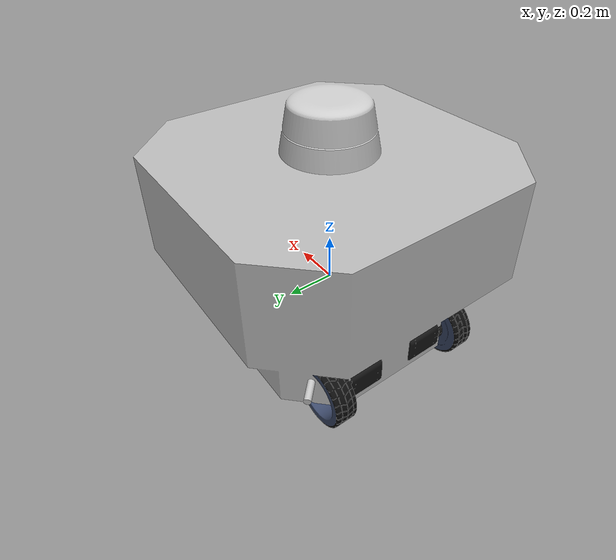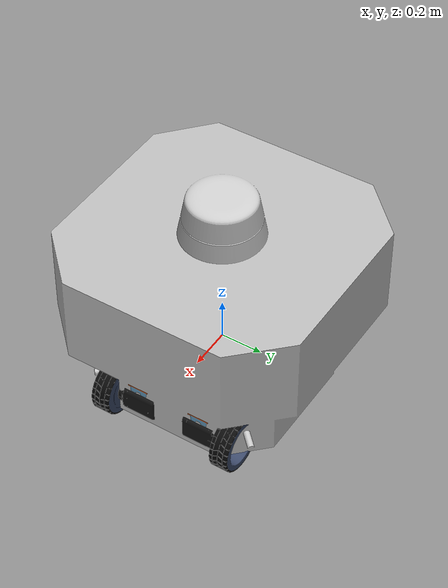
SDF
<sdf version="1.7">
  <model name="rs_robot">

    <link name="base_link">
      <inertial>
        <pose>-0.015715 0.0 0.11 0.0 -0.0 0.0</pose>
        <mass>175.0</mass>
        <inertia>
          <ixx>1.514375</ixx>
          <ixy>0.0</ixy>
          <ixz>0.41250000000000003</ixz>
          <iyy>1.103034375</iyy>
          <iyz>0.0</iyz>
          <izz>1.061159375</izz>
        </inertia>
      </inertial>
      <visual name="base_footprint_fixed_joint_lump__base_link_visual">
        <pose>0.0 0.0 0.0 0.0 -0.0 0.0</pose>
        <geometry>
          <mesh>
            <scale>5.0 5.0 5.0</scale>
            <uri>model://rs_robot/meshes/DAE/base/base_link.dae</uri>
          </mesh>
        </geometry>
      </visual>
    </link>

    <joint name="fl_steering_joint" type="revolute">
      <pose relative_to="base_link">0.385 0.155 -0.02 0.0 -0.0 0.0</pose>
      <parent>base_link</parent>
      <child>fl_steering_link</child>
      <axis>
        <xyz>0 0 1</xyz>
        <limit>
          <lower>-2.1</lower>
          <upper>2.1</upper>
          <effort>5</effort>
          <velocity>6.28</velocity>
        </limit>
        <dynamics>
          <damping>0.005</damping>
          <friction>0.02</friction>
          <spring_reference>0</spring_reference>
          <spring_stiffness>0</spring_stiffness>
        </dynamics>
      </axis>
    </joint>
    <link name="fl_steering_link">
      <pose relative_to="fl_steering_joint">0.0 0.0 0.0 0.0 -0.0 0.0</pose>
      <inertial>
        <pose>0.0 0.0 -0.1 0.0 -0.0 0.0</pose>
        <mass>18.75</mass>
        <inertia>
          <ixx>0.03125</ixx>
          <ixy>0.0</ixy>
          <ixz>0.0</ixz>
          <iyy>0.03125</iyy>
          <iyz>0.0</iyz>
          <izz>0.012499999999999999</izz>
        </inertia>
      </inertial>
      <visual name="fl_steering_link_visual">
        <pose>0.0 0.0 0.0 0.0 -0.0 0.0</pose>
        <geometry>
          <mesh>
            <scale>5.0 5.0 5.0</scale>
            <uri>model://rs_robot/meshes/DAE/suspension/front_left_link.dae</uri>
          </mesh>
        </geometry>
      </visual>
      <self_collide>0</self_collide>
    </link>
    <joint name="fl_wheel_joint" type="revolute">
      <pose relative_to="fl_steering_link">0.0 0.10500000000000001 -0.125 0.0 0.0 -3.14159</pose>
      <parent>fl_steering_link</parent>
      <child>fl_wheel_link</child>
      <axis>
        <xyz>0 -1 0</xyz>
        <limit>
          <effort>1.5</effort>
          <velocity>20</velocity>
          <lower>-1e+16</lower>
          <upper>1e+16</upper>
        </limit>
        <dynamics>
          <damping>0.005</damping>
          <friction>0.02</friction>
          <spring_reference>0</spring_reference>
          <spring_stiffness>0</spring_stiffness>
        </dynamics>
      </axis>
    </joint>
    <link name="fl_wheel_link">
      <pose relative_to="fl_wheel_joint">0.0 0.0 0.0 0.0 -0.0 0.0</pose>
      <inertial>
        <pose>0.0 -0.035 0.0 0.0 -0.0 0.0</pose>
        <mass>6.25</mass>
        <inertia>
          <ixx>0.03125</ixx>
          <ixy>0.0</ixy>
          <ixz>0.0</ixz>
          <iyy>0.05625</iyy>
          <iyz>0.0</iyz>
          <izz>0.03125</izz>
        </inertia>
      </inertial>
      <visual name="fl_wheel_link_visual">
        <pose>0.0 0.0 0.0 0.0 -0.0 0.0</pose>
        <geometry>
          <mesh>
            <scale>5.0 5.0 5.0</scale>
            <uri>model://rs_robot/meshes/DAE/wheel/wheel_link.dae</uri>
          </mesh>
        </geometry>
      </visual>
    </link>
    <joint name="fr_steering_joint" type="revolute">
      <pose relative_to="base_link">0.385 -0.155 -0.02 0.0 -0.0 0.0</pose>
      <parent>base_link</parent>
      <child>fr_steering_link</child>
      <axis>
        <xyz>0 0 1</xyz>
        <limit>
          <lower>-2.1</lower>
          <upper>2.1</upper>
          <effort>5</effort>
          <velocity>6.28</velocity>
        </limit>
        <dynamics>
          <damping>0.005</damping>
          <friction>0.02</friction>
          <spring_reference>0</spring_reference>
          <spring_stiffness>0</spring_stiffness>
        </dynamics>
      </axis>
    </joint>
    <link name="fr_steering_link">
      <pose relative_to="fr_steering_joint">0.0 0.0 0.0 0.0 -0.0 0.0</pose>
      <inertial>
        <pose>0.0 0.0 -0.1 0.0 -0.0 0.0</pose>
        <mass>18.75</mass>
        <inertia>
          <ixx>0.03125</ixx>
          <ixy>0.0</ixy>
          <ixz>0.0</ixz>
          <iyy>0.03125</iyy>
          <iyz>0.0</iyz>
          <izz>0.012499999999999999</izz>
        </inertia>
      </inertial>
      <visual name="fr_steering_link_visual">
        <pose>0.0 0.0 0.0 0.0 -0.0 0.0</pose>
        <geometry>
          <mesh>
            <scale>5.0 5.0 5.0</scale>
            <uri>model://rs_robot/meshes/DAE/suspension/front_right_link.dae</uri>
          </mesh>
        </geometry>
      </visual>
      <self_collide>0</self_collide>
    </link>
    <joint name="fr_wheel_joint" type="revolute">
      <pose relative_to="fr_steering_link">0.0 -0.10500000000000001 -0.125 0.0 -0.0 0.0</pose>
      <parent>fr_steering_link</parent>
      <child>fr_wheel_link</child>
      <axis>
        <xyz>0 1 0</xyz>
        <limit>
          <effort>1.5</effort>
          <velocity>20</velocity>
          <lower>-1e+16</lower>
          <upper>1e+16</upper>
        </limit>
        <dynamics>
          <damping>0.005</damping>
          <friction>0.02</friction>
          <spring_reference>0</spring_reference>
          <spring_stiffness>0</spring_stiffness>
        </dynamics>
      </axis>
    </joint>
    <link name="fr_wheel_link">
      <pose relative_to="fr_wheel_joint">0.0 0.0 0.0 0.0 -0.0 0.0</pose>
      <inertial>
        <pose>0.0 -0.035 0.0 0.0 -0.0 0.0</pose>
        <mass>6.25</mass>
        <inertia>
          <ixx>0.03125</ixx>
          <ixy>0.0</ixy>
          <ixz>0.0</ixz>
          <iyy>0.05625</iyy>
          <iyz>0.0</iyz>
          <izz>0.03125</izz>
        </inertia>
      </inertial>
      <visual name="fr_wheel_link_visual">
        <pose>0.0 0.0 0.0 0.0 -0.0 0.0</pose>
        <geometry>
          <mesh>
            <scale>5.0 5.0 5.0</scale>
            <uri>model://rs_robot/meshes/DAE/wheel/wheel_link.dae</uri>
          </mesh>
        </geometry>
      </visual>
    </link>

    <joint name="rl_steering_joint" type="revolute">
      <pose relative_to="base_link">-0.385 0.155 -0.02 0.0 -0.0 0.0</pose>
      <parent>base_link</parent>
      <child>rl_steering_link</child>
      <axis>
        <xyz>0 0 1</xyz>
        <limit>
          <lower>-2.1</lower>
          <upper>2.1</upper>
          <effort>5</effort>
          <velocity>6.28</velocity>
        </limit>
        <dynamics>
          <damping>0.005</damping>
          <friction>0.02</friction>
          <spring_reference>0</spring_reference>
          <spring_stiffness>0</spring_stiffness>
        </dynamics>
      </axis>
    </joint>
    <link name="rl_steering_link">
      <pose relative_to="rl_steering_joint">0.0 0.0 0.0 0.0 -0.0 0.0</pose>
      <inertial>
        <pose>0.0 0.0 -0.1 0.0 -0.0 0.0</pose>
        <mass>18.75</mass>
        <inertia>
          <ixx>0.03125</ixx>
          <ixy>0.0</ixy>
          <ixz>0.0</ixz>
          <iyy>0.03125</iyy>
          <iyz>0.0</iyz>
          <izz>0.012499999999999999</izz>
        </inertia>
      </inertial>
      <visual name="rl_steering_link_visual">
        <pose>0.0 0.0 0.0 0.0 -0.0 0.0</pose>
        <geometry>
          <mesh>
            <scale>5.0 5.0 5.0</scale>
            <uri>model://rs_robot/meshes/DAE/suspension/rear_left_link.dae</uri>
          </mesh>
        </geometry>
      </visual>
      <self_collide>0</self_collide>
    </link>
    <joint name="rl_wheel_joint" type="revolute">
      <pose relative_to="rl_steering_link">0.0 0.10500000000000001 -0.125 0.0 0.0 -3.14159</pose>
      <parent>rl_steering_link</parent>
      <child>rl_wheel_link</child>
      <axis>
        <xyz>0 -1 0</xyz>
        <limit>
          <effort>1.5</effort>
          <velocity>20</velocity>
          <lower>-1e+16</lower>
          <upper>1e+16</upper>
        </limit>
        <dynamics>
          <damping>0.005</damping>
          <friction>0.02</friction>
          <spring_reference>0</spring_reference>
          <spring_stiffness>0</spring_stiffness>
        </dynamics>
      </axis>
    </joint>
    <link name="rl_wheel_link">
      <pose relative_to="rl_wheel_joint">0.0 0.0 0.0 0.0 -0.0 0.0</pose>
      <inertial>
        <pose>0.0 -0.035 0.0 0.0 -0.0 0.0</pose>
        <mass>6.25</mass>
        <inertia>
          <ixx>0.03125</ixx>
          <ixy>0.0</ixy>
          <ixz>0.0</ixz>
          <iyy>0.05625</iyy>
          <iyz>0.0</iyz>
          <izz>0.03125</izz>
        </inertia>
      </inertial>
      <visual name="rl_wheel_link_visual">
        <pose>0.0 0.0 0.0 0.0 -0.0 0.0</pose>
        <geometry>
          <mesh>
            <scale>5.0 5.0 5.0</scale>
            <uri>model://rs_robot/meshes/DAE/wheel/wheel_link.dae</uri>
          </mesh>
        </geometry>
      </visual>
    </link>
    <joint name="rr_steering_joint" type="revolute">
      <pose relative_to="base_link">-0.385 -0.155 -0.02 0.0 -0.0 0.0</pose>
      <parent>base_link</parent>
      <child>rr_steering_link</child>
      <axis>
        <xyz>0 0 1</xyz>
        <limit>
          <lower>-2.1</lower>
          <upper>2.1</upper>
          <effort>5</effort>
          <velocity>6.28</velocity>
        </limit>
        <dynamics>
          <damping>0.005</damping>
          <friction>0.02</friction>
          <spring_reference>0</spring_reference>
          <spring_stiffness>0</spring_stiffness>
        </dynamics>
      </axis>
    </joint>
    <link name="rr_steering_link">
      <pose relative_to="rr_steering_joint">0.0 0.0 0.0 0.0 -0.0 0.0</pose>
      <inertial>
        <pose>0.0 0.0 -0.1 0.0 -0.0 0.0</pose>
        <mass>18.75</mass>
        <inertia>
          <ixx>0.03125</ixx>
          <ixy>0.0</ixy>
          <ixz>0.0</ixz>
          <iyy>0.03125</iyy>
          <iyz>0.0</iyz>
          <izz>0.012499999999999999</izz>
        </inertia>
      </inertial>
      <visual name="rr_steering_link_visual">
        <pose>0.0 0.0 0.0 0.0 -0.0 0.0</pose>
        <geometry>
          <mesh>
            <scale>5.0 5.0 5.0</scale>
            <uri>model://rs_robot/meshes/DAE/suspension/rear_right_link.dae</uri>
          </mesh>
        </geometry>
      </visual>
      <self_collide>0</self_collide>
    </link>
    <joint name="rr_wheel_joint" type="revolute">
      <pose relative_to="rr_steering_link">0.0 -0.10500000000000001 -0.125 0.0 -0.0 0.0</pose>
      <parent>rr_steering_link</parent>
      <child>rr_wheel_link</child>
      <axis>
        <xyz>0 1 0</xyz>
        <limit>
          <effort>1.5</effort>
          <velocity>20</velocity>
          <lower>-1e+16</lower>
          <upper>1e+16</upper>
        </limit>
        <dynamics>
          <damping>0.005</damping>
          <friction>0.02</friction>
          <spring_reference>0</spring_reference>
          <spring_stiffness>0</spring_stiffness>
        </dynamics>
      </axis>
    </joint>
    <link name="rr_wheel_link">
      <pose relative_to="rr_wheel_joint">0.0 0.0 0.0 0.0 -0.0 0.0</pose>
      <inertial>
        <pose>0.0 -0.035 0.0 0.0 -0.0 0.0</pose>
        <mass>6.25</mass>
        <inertia>
          <ixx>0.03125</ixx>
          <ixy>0.0</ixy>
          <ixz>0.0</ixz>
          <iyy>0.05625</iyy>
          <iyz>0.0</iyz>
          <izz>0.03125</izz>
        </inertia>
      </inertial>
      <visual name="rr_wheel_link_visual">
        <pose>0.0 0.0 0.0 0.0 -0.0 0.0</pose>
        <geometry>
          <mesh>
            <scale>5.0 5.0 5.0</scale>
            <uri>model://rs_robot/meshes/DAE/wheel/wheel_link.dae</uri>
          </mesh>
        </geometry>
      </visual>
    </link>

    <!-- Box alargado en horizontal -->
    <link name="box_central">
      <pose>0 0 0.35 0 1.5708 1.5708</pose>
      <collision name="collision">
        <geometry>
          <cylinder>
            <length>0.4</length>
            <radius>0.1</radius>
          </cylinder>
        </geometry>
      </collision>
      <visual name="visual">
        <geometry>
          <cylinder>
            <length>0.4</length>
            <radius>0.1</radius>
          </cylinder>
        </geometry>
        <material>
          <script>
            <uri>model://rs_robot/meshes/</uri>
            <name>textura_rayas</name>
          </script>
        </material>
      </visual>
    </link>

    <!-- Box plano vertical izquierdo -->
    <link name="box_plano_izquierdo">
      <pose>0 -0.2 0.35 0 0 1.5708</pose>
      <collision name="collision">
        <geometry>
          <box>
            <size>0.025 0.25 0.35</size>
          </box>
        </geometry>
      </collision>
      <visual name="visual">
        <geometry>
          <box>
            <size>0.025 0.25 0.35</size>
          </box>
        </geometry>
        <material>
          <ambient>0.5 0.5 0.5 1</ambient>
          <diffuse>0.5 0.5 0.5 1</diffuse>
          <specular>0.1 0.1 0.1 1</specular>
          <emissive>0 0 0 1</emissive>
        </material>
      </visual>
    </link>

    <!-- Box plano vertical derecho -->
    <link name="box_plano_derecho">
      <pose>0 0.2 0.35 0 0 1.5708</pose>
      <collision name="collision">
        <geometry>
          <box>
            <size>0.025 0.25 0.35</size>
          </box>
        </geometry>
      </collision>
      <visual name="visual">
        <geometry>
          <box>
            <size>0.025 0.25 0.35</size>
          </box>
        </geometry>
        <material>
          <ambient>0.5 0.5 0.5 1</ambient>
          <diffuse>0.5 0.5 0.5 1</diffuse>
          <specular>0.1 0.1 0.1 1</specular>
          <emissive>0 0 0 1</emissive>
        </material>
      </visual>
    </link>

    <!-- Unión revoluta izquierda -->
    <joint name="joint_izquierdo" type="revolute">
      <parent>box_plano_izquierdo</parent>
      <child>box_central</child>
      <pose>0 0 0 0 0 1.5708</pose>
      <axis>
        <xyz>0 0 1</xyz>
        <limit>
          <lower>-1e16</lower>
          <upper>1e16</upper>
        </limit>
        <dynamics>
          <damping>0.1</damping>
          <friction>0.0</friction>
          <spring_stiffness>0.05</spring_stiffness>
          <spring_reference>0.0</spring_reference>
        </dynamics>
      </axis>
    </joint>

    <!-- Unión revoluta derecha -->
    <joint name="joint_derecho" type="revolute">
      <parent>box_plano_derecho</parent>
      <child>box_central</child>
      <pose>0 0 0 0 0 1.5708</pose>
      <axis>
        <xyz>0 0 1</xyz>
        <limit>
          <lower>-1e16</lower>
          <upper>1e16</upper>
        </limit>
        <dynamics>
          <damping>0.1</damping>
          <friction>0.0</friction>
          <spring_stiffness>0.05</spring_stiffness>
          <spring_reference>0.0</spring_reference>
        </dynamics>
      </axis>
    </joint>

    <!-- Unión fixed derecha al UGV -->
    <joint name="joint_derecho_to_ugv" type="fixed">
      <parent>base_link</parent>
      <child>box_plano_derecho</child>
      <pose>0 0 0 0 0 1.5708</pose>
    </joint>

    <!-- Unión fixed izquierda al UGV -->
    <joint name="joint_izquierdo_to_ugv" type="fixed">
      <parent>base_link</parent>
      <child>box_plano_izquierdo</child>
      <pose>0 0 0 0 0 1.5708</pose>
    </joint>

    <static>0</static>

    <plugin name="four_ws_robot_joint_state" filename="libgazebo_ros_joint_state_publisher.so">
      <ros>
          <remapping>~/out:=joint_states</remapping>
      </ros>
      <update_rate>30</update_rate>
      <joint_name>fl_wheel_joint</joint_name>
      <joint_name>fr_wheel_joint</joint_name>
      <joint_name>rl_wheel_joint</joint_name>
      <joint_name>rr_wheel_joint</joint_name>
      <joint_name>joint_izquierdo</joint_name>
      <joint_name>fl_steering_joint</joint_name>
      <joint_name>fr_steering_joint</joint_name>
      <joint_name>rl_steering_joint</joint_name>
      <joint_name>rr_steering_joint</joint_name>
    </plugin>

  <ros2_control name="GazeboSystem" type="system">
    <hardware>
      <plugin>gazebo_ros2_control/GazeboSystem</plugin>
    </hardware>

    <joint name="fl_wheel_joint">
      <command_interface name="velocity">
        <param name="min">-3.14</param>
        <param name="max">3.14</param>
      </command_interface>
      <state_interface name="velocity" />
      <state_interface name="effort" />
    </joint>

    <joint name="fr_wheel_joint">
      <command_interface name="velocity">
        <param name="min">-3.14</param>
        <param name="max">3.14</param>
      </command_interface>
      <state_interface name="velocity" />
      <state_interface name="effort" />
    </joint>

    <joint name="rl_wheel_joint">
      <command_interface name="velocity">
        <param name="min">-3.14</param>
        <param name="max">3.14</param>
      </command_interface>
      <state_interface name="velocity" />
      <state_interface name="effort" />
    </joint>

    <joint name="rr_wheel_joint">
      <command_interface name="velocity">
        <param name="min">-3.14</param>
        <param name="max">3.14</param>
      </command_interface>
      <state_interface name="velocity" />
      <state_interface name="effort" />
    </joint>

    <joint name="joint_izquierdo">
      <command_interface name="velocity">
        <param name="min">-3.14</param>
        <param name="max">3.14</param>
      </command_interface>
      <state_interface name="velocity" />
      <state_interface name="effort" />
    </joint>

    <joint name="fl_steering_joint">
      <command_interface name="position">
        <param name="min">-3.14</param>
        <param name="max">3.14</param>
      </command_interface>
      <state_interface name="position">
        <param name="initial_value">0</param>
      </state_interface>
      <state_interface name="velocity" />
      <state_interface name="effort" />
    </joint>

    <joint name="fr_steering_joint">
      <command_interface name="position">
        <param name="min">-3.14</param>
        <param name="max">3.14</param>
      </command_interface>
      <state_interface name="position">
        <param name="initial_value">0</param>
      </state_interface>
      <state_interface name="velocity" />
      <state_interface name="effort" />
    </joint>

    <joint name="rl_steering_joint">
      <command_interface name="position">
        <param name="min">-3.14</param>
        <param name="max">3.14</param>
      </command_interface>
      <state_interface name="position">
        <param name="initial_value">0</param>
      </state_interface>
      <state_interface name="velocity" />
      <state_interface name="effort" />
    </joint>

    <joint name="rr_steering_joint">
      <command_interface name="position">
        <param name="min">-3.14</param>
        <param name="max">3.14</param>
      </command_interface>
      <state_interface name="position">
        <param name="initial_value">0</param>
      </state_interface>
      <state_interface name="velocity" />
      <state_interface name="effort" />
    </joint>

  </ros2_control>

    <plugin name="gazebo_ros2_control" filename="libgazebo_ros2_control.so">
      <ros>
        <namespace>/</namespace>
      </ros>
      <parameters>/home/upo/marsupial/install/four_ws_control/share/four_ws_control/models/rs_robot/config/controllers.yaml</parameters>
    </plugin>

  </model>
</sdf>
